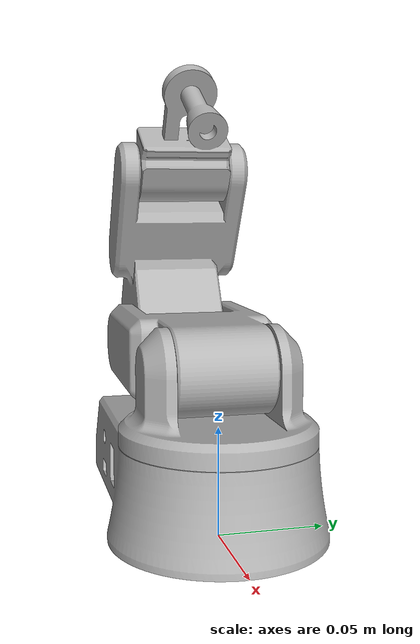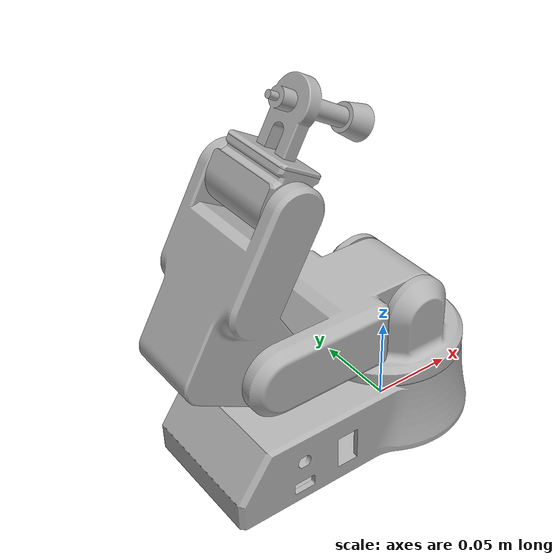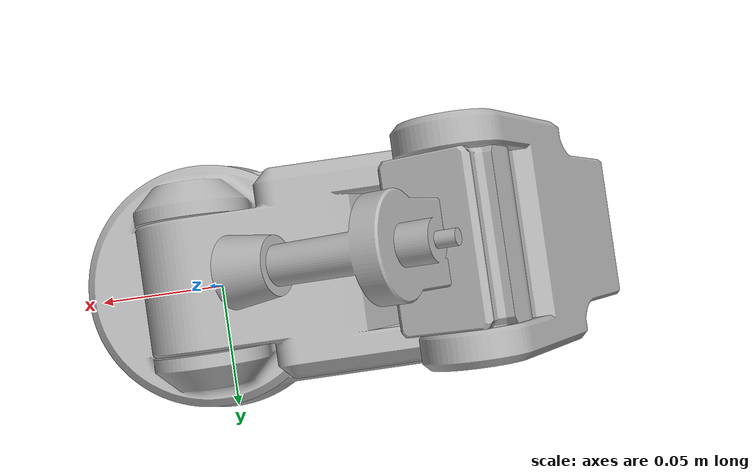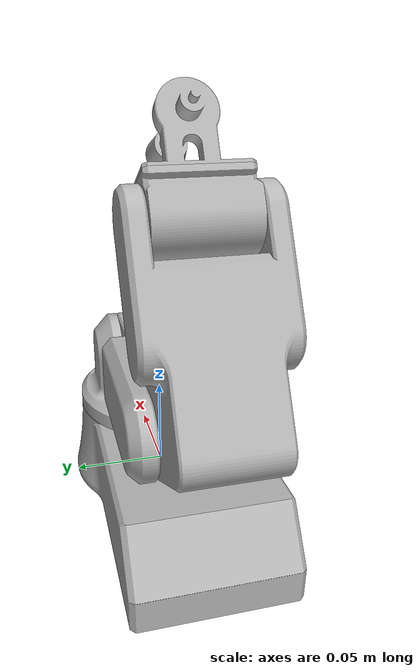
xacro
<?xml version="1.0" ?>
<robot name="urdf_minima_pump" xmlns:xacro="http://www.ros.org/wiki/xacro">

<xacro:include filename="$(find urdf_minima_pump_description)/urdf/materials.xacro" />
<xacro:include filename="$(find urdf_minima_pump_description)/urdf/urdf_minima_pump.trans" />
<xacro:include filename="$(find urdf_minima_pump_description)/urdf/urdf_minima_pump.gazebo" />
<link name="base_link">
  <inertial>
    <origin xyz="-0.028239912623268335 0.00022897397265255766 0.022351581735481192" rpy="0 0 0"/>
    <mass value="1.678664334320221"/>
    <inertia ixx="0.001714" iyy="0.004366" izz="0.005221" ixy="1.5e-05" iyz="2e-06" ixz="-0.000109"/>
  </inertial>
  <visual>
    <origin xyz="0 0 0" rpy="0 0 0"/>
    <geometry>
      <mesh filename="file://$(find urdf_minima_pump_description)/meshes/base_link.stl" scale="0.001 0.001 0.001"/>
    </geometry>
    <material name="silver"/>
  </visual>
  <collision>
    <origin xyz="0 0 0" rpy="0 0 0"/>
    <geometry>
      <mesh filename="file://$(find urdf_minima_pump_description)/meshes/base_link.stl" scale="0.001 0.001 0.001"/>
    </geometry>
  </collision>
</link>

<link name="Joint1_v4_1">
  <inertial>
    <origin xyz="-0.00034052204176712454 0.0004560463703401332 0.012793551538439266" rpy="0 0 0"/>
    <mass value="0.7598292010416028"/>
    <inertia ixx="0.000574" iyy="0.000402" izz="0.000735" ixy="-0.0" iyz="-7e-06" ixz="-0.0"/>
  </inertial>
  <visual>
    <origin xyz="-0.0 -0.0 -0.043" rpy="0 0 0"/>
    <geometry>
      <mesh filename="file://$(find urdf_minima_pump_description)/meshes/Joint1_v4_1.stl" scale="0.001 0.001 0.001"/>
    </geometry>
    <material name="silver"/>
  </visual>
  <collision>
    <origin xyz="-0.0 -0.0 -0.043" rpy="0 0 0"/>
    <geometry>
      <mesh filename="file://$(find urdf_minima_pump_description)/meshes/Joint1_v4_1.stl" scale="0.001 0.001 0.001"/>
    </geometry>
  </collision>
</link>

<link name="Joint2_v4_1">
  <inertial>
    <origin xyz="-0.05185007849659991 0.02035044360694894 -0.0001437587115089567" rpy="0 0 0"/>
    <mass value="0.6491358467224337"/>
    <inertia ixx="0.000554" iyy="0.00077" izz="0.001111" ixy="-1.5e-05" iyz="2e-06" ixz="-2e-06"/>
  </inertial>
  <visual>
    <origin xyz="-9e-06 0.023 -0.0758" rpy="0 0 0"/>
    <geometry>
      <mesh filename="file://$(find urdf_minima_pump_description)/meshes/Joint2_v4_1.stl" scale="0.001 0.001 0.001"/>
    </geometry>
    <material name="silver"/>
  </visual>
  <collision>
    <origin xyz="-9e-06 0.023 -0.0758" rpy="0 0 0"/>
    <geometry>
      <mesh filename="file://$(find urdf_minima_pump_description)/meshes/Joint2_v4_1.stl" scale="0.001 0.001 0.001"/>
    </geometry>
  </collision>
</link>

<link name="Joint3_v5_1">
  <inertial>
    <origin xyz="0.02880516404447027 0.023483526277794722 0.0267193962835829" rpy="0 0 0"/>
    <mass value="0.5326826980341239"/>
    <inertia ixx="0.000447" iyy="0.000743" izz="0.000793" ixy="1.1e-05" iyz="2.2e-05" ixz="-0.000126"/>
  </inertial>
  <visual>
    <origin xyz="0.089991 0.023 -0.0758" rpy="0 0 0"/>
    <geometry>
      <mesh filename="file://$(find urdf_minima_pump_description)/meshes/Joint3_v5_1.stl" scale="0.001 0.001 0.001"/>
    </geometry>
    <material name="silver"/>
  </visual>
  <collision>
    <origin xyz="0.089991 0.023 -0.0758" rpy="0 0 0"/>
    <geometry>
      <mesh filename="file://$(find urdf_minima_pump_description)/meshes/Joint3_v5_1.stl" scale="0.001 0.001 0.001"/>
    </geometry>
  </collision>
</link>

<link name="Joint4_p_v2_1">
  <inertial>
    <origin xyz="0.0032249543497295616 0.02574256021275767 -5.92303983637521e-14" rpy="0 0 0"/>
    <mass value="0.16387191590708247"/>
    <inertia ixx="6e-05" iyy="2.5e-05" izz="5.8e-05" ixy="-0.0" iyz="-0.0" ixz="-0.0"/>
  </inertial>
  <visual>
    <origin xyz="0.007288 0.023 -0.1113" rpy="0 0 0"/>
    <geometry>
      <mesh filename="file://$(find urdf_minima_pump_description)/meshes/Joint4_p_v2_1.stl" scale="0.001 0.001 0.001"/>
    </geometry>
    <material name="silver"/>
  </visual>
  <collision>
    <origin xyz="0.007288 0.023 -0.1113" rpy="0 0 0"/>
    <geometry>
      <mesh filename="file://$(find urdf_minima_pump_description)/meshes/Joint4_p_v2_1.stl" scale="0.001 0.001 0.001"/>
    </geometry>
  </collision>
</link>

<link name="pump_v1_1">
  <inertial>
    <origin xyz="0.019733592495933802 2.5613450000990776e-05 -0.009674186866012319" rpy="0 0 0"/>
    <mass value="0.10173695025237381"/>
    <inertia ixx="3.1e-05" iyy="3.9e-05" izz="1.8e-05" ixy="-0.0" iyz="0.0" ixz="6e-06"/>
  </inertial>
  <visual>
    <origin xyz="-0.010712 -0.0 -0.1113" rpy="0 0 0"/>
    <geometry>
      <mesh filename="file://$(find urdf_minima_pump_description)/meshes/pump_v1_1.stl" scale="0.001 0.001 0.001"/>
    </geometry>
    <material name="silver"/>
  </visual>
  <collision>
    <origin xyz="-0.010712 -0.0 -0.1113" rpy="0 0 0"/>
    <geometry>
      <mesh filename="file://$(find urdf_minima_pump_description)/meshes/pump_v1_1.stl" scale="0.001 0.001 0.001"/>
    </geometry>
  </collision>
</link>

<joint name="Revolute1" type="revolute">
  <origin xyz="0.0 0.0 0.043" rpy="0 0 0"/>
  <parent link="base_link"/>
  <child link="Joint1_v4_1"/>
  <axis xyz="0.0 -0.0 1.0"/>
  <limit upper="1.570796" lower="-1.570796" effort="100" velocity="0.9"/>
</joint>

<joint name="Revolute2" type="revolute">
  <origin xyz="9e-06 -0.023 0.0328" rpy="0 0 0"/>
  <parent link="Joint1_v4_1"/>
  <child link="Joint2_v4_1"/>
  <axis xyz="0.0 1.0 0.0"/>
  <limit upper="2.96706" lower="0.0" effort="100" velocity="0.9"/>
</joint>

<joint name="Revolute3" type="revolute">
  <origin xyz="-0.09 0.0 0.0" rpy="0 0 0"/>
  <parent link="Joint2_v4_1"/>
  <child link="Joint3_v5_1"/>
  <axis xyz="0.0 1.0 0.0"/>
  <limit upper="6.283185" lower="4.18879" effort="100" velocity="0.9"/>
</joint>

<joint name="Revolute4" type="revolute">
  <origin xyz="0.082703 0.0 0.0355" rpy="0 0 0"/>
  <parent link="Joint3_v5_1"/>
  <child link="Joint4_p_v2_1"/>
  <axis xyz="-0.0 1.0 0.0"/>
  <limit upper="1.570796" lower="-1.570796" effort="100" velocity="0.9"/>
</joint>

<joint name="Rigid5" type="fixed">
  <origin xyz="0.018 0.023 0.0" rpy="0 0 0"/>
  <parent link="Joint4_p_v2_1"/>
  <child link="pump_v1_1"/>
</joint>

</robot>

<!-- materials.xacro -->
<robot name="urdf_minima_pump" xmlns:xacro="http://www.ros.org/wiki/xacro" >

<material name="silver">
  <color rgba="0.700 0.700 0.700 1.000"/>
</material>

</robot>

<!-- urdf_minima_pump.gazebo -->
<robot name="urdf_minima_pump" xmlns:xacro="http://www.ros.org/wiki/xacro" >

<xacro:property name="body_color" value="Gazebo/Silver" />

<gazebo>
  <plugin name="control" filename="libgazebo_ros_control.so"/>
</gazebo>
<gazebo reference="base_link">
  <material>${body_color}</material>
  <mu1>0.2</mu1>
  <mu2>0.2</mu2>
  <self_collide>true</self_collide>
  <gravity>true</gravity>
</gazebo>

<gazebo reference="Joint1_v4_1">
  <material>${body_color}</material>
  <mu1>0.2</mu1>
  <mu2>0.2</mu2>
  <self_collide>true</self_collide>
</gazebo>

<gazebo reference="Joint2_v4_1">
  <material>${body_color}</material>
  <mu1>0.2</mu1>
  <mu2>0.2</mu2>
  <self_collide>true</self_collide>
</gazebo>

<gazebo reference="Joint3_v5_1">
  <material>${body_color}</material>
  <mu1>0.2</mu1>
  <mu2>0.2</mu2>
  <self_collide>true</self_collide>
</gazebo>

<gazebo reference="Joint4_p_v2_1">
  <material>${body_color}</material>
  <mu1>0.2</mu1>
  <mu2>0.2</mu2>
  <self_collide>true</self_collide>
</gazebo>

<gazebo reference="pump_v1_1">
  <material>${body_color}</material>
  <mu1>0.2</mu1>
  <mu2>0.2</mu2>
  <self_collide>true</self_collide>
</gazebo>

</robot>
